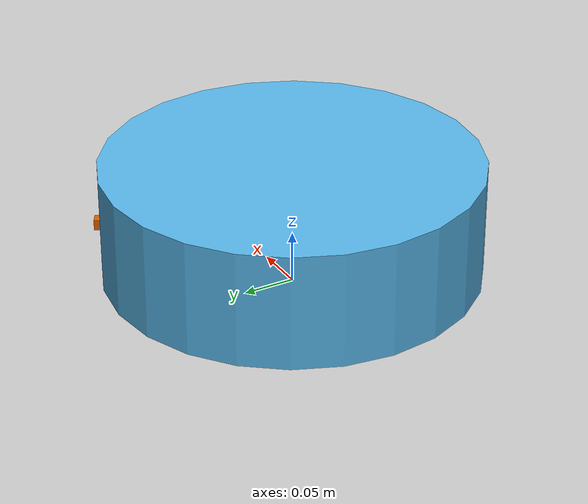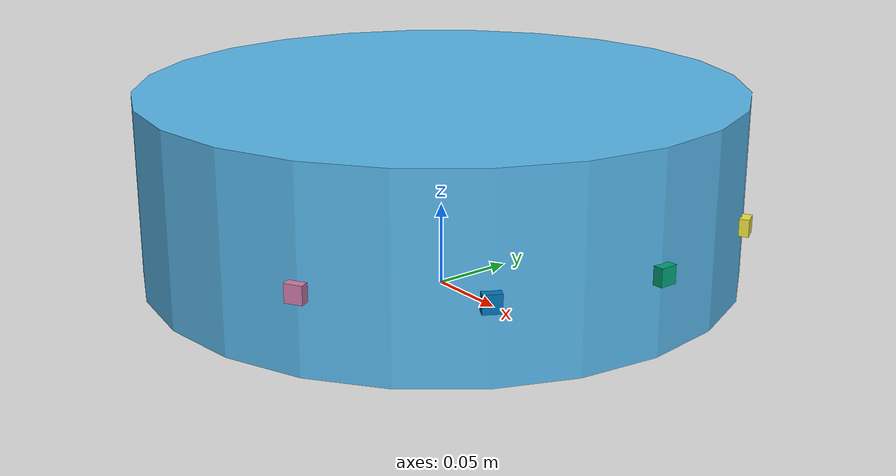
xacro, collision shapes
<?xml version="1.0"?>
<robot name="kobuki_standalone"
	xmlns:sensor="http://playerstage.sourceforge.net/gazebo/xmlschema/#sensor"
	xmlns:controller="http://playerstage.sourceforge.net/gazebo/xmlschema/#controller"
	xmlns:interface="http://playerstage.sourceforge.net/gazebo/xmlschema/#interface"
	xmlns:xacro="http://ros.org/wiki/xacro">
	<!-- Defines the kobuki component tag. -->
	<xacro:include filename="$(find custom_description)/description/kobuki/urdf/kobuki.urdf.xacro" />
	<kobuki/>
	<xacro:include filename="$(find custom_description)/description/range_sensor.urdf.xacro" />

	<!-- front sensor -->
	<range_sensor name="front_sonar" parent="base_link" ros_topic="/front_range" update_rate="50" min_range="0.020" max_range="3" field_of_view="${30*3.1415926/180}" ray_count="1">
		<origin xyz="0.178 0.0 0.05" rpy="0 0 0" />
	</range_sensor>

	<!-- left sensor -->
	<range_sensor name="front_left_sonar" parent="base_link" ros_topic="/front_left_range" update_rate="50" min_range="0.02" max_range="3" field_of_view="${30*3.1415926/180}" ray_count="1">
		<origin xyz="0.154 0.089 0.05" rpy="0 0 ${30*3.1415926/180}" />
	</range_sensor>
	<!-- right sensor -->
	<range_sensor name="front_right_sonar" parent="base_link" ros_topic="/front_right_range" update_rate="50" min_range="0.020" max_range="3" field_of_view="${30*3.1415926/180}" ray_count="1">
		<origin xyz="0.154 -0.089 0.05" rpy="0 0 ${-30*3.1415926/180}" />
	</range_sensor>
	<range_sensor name="left_sonar" parent="base_link" ros_topic="/left_range" update_rate="50" min_range="0.02" max_range="3" field_of_view="${30*3.1415926/180}" ray_count="1">
		<origin xyz="0.089 0.154 0.05" rpy="0 0 ${60*3.1415926/180}" />
	</range_sensor>
	<range_sensor name="right_sonar" parent="base_link" ros_topic="/right_range" update_rate="50" min_range="0.02" max_range="3" field_of_view="${30*3.1415926/180}" ray_count="1">
		<origin xyz="0.089 -0.154 0.05" rpy="0 0 ${-60*3.1415926/180}" />
	</range_sensor>

</robot>

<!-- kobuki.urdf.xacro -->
<robot name="kobuki" xmlns:xacro="http://ros.org/wiki/xacro">
        <xacro:include filename="$(find custom_description)/description/common_properties.urdf.xacro" />
        <xacro:include filename="$(find custom_description)/description/kobuki/urdf/kobuki_gazebo.urdf.xacro" />
	<!-- Kobuki -->
	<macro name="kobuki">
		<link name="base_footprint" />
		<joint name="base_joint" type="fixed">
			<origin xyz="0 0 0.0102" rpy="0 0 0" />
			<parent link="base_footprint" />
			<child link="base_link" />
		</joint>
		<link name="base_link">
			<visual>
				<geometry>
					<!-- new mesh -->
					<mesh filename="package://kobuki_description/meshes/main_body.dae" />
				</geometry>
				<origin xyz="0.001 0 0.05199" rpy="0 0 0" />
			</visual>
			<collision>
				<geometry>
					<cylinder length="0.10938" radius="0.178" />
				</geometry>
				<origin xyz="0.0 0 0.05949" rpy="0 0 0" />
			</collision>
			<inertial>
				<!-- COM experimentally determined -->
				<origin xyz="0.01 0 0" />
				<mass value="2.4" />
				<!-- 2.4/2.6 kg for small/big battery pack -->
				<inertia ixx="0.019995" ixy="0.0" ixz="0.0" iyy="0.019995" iyz="0.0" izz="0.03675" />
			</inertial>
		</link>
		<joint name="wheel_left_joint" type="continuous">
			<parent link="base_link" />
			<child link="wheel_left_link" />
			<origin xyz="0.00 ${0.23/2} 0.0250" rpy="${-M_PI/2} 0 0" />
			<axis xyz="0 0 1" />
		</joint>
		<link name="wheel_left_link">
			<visual>
				<geometry>
					<mesh filename="package://kobuki_description/meshes/wheel.dae" />
				</geometry>
				<origin xyz="0 0 0" rpy="0 0 0" />
			</visual>
			<collision>
				<geometry>
					<cylinder length="0.0206" radius="0.0352" />
				</geometry>
				<origin rpy="0 0 0" xyz="0 0 0" />
			</collision>
			<inertial>
				<mass value="0.01" />
				<origin xyz="0 0 0" />
				<inertia ixx="0.001" ixy="0.0" ixz="0.0" iyy="0.001" iyz="0.0" izz="0.001" />
			</inertial>
		</link>
		<joint name="wheel_right_joint" type="continuous">
			<parent link="base_link" />
			<child link="wheel_right_link" />
			<origin xyz="0.00 -${0.23/2} 0.0250" rpy="${-M_PI/2} 0 0" />
			<axis xyz="0 0 1" />
		</joint>
		<link name="wheel_right_link">
			<visual>
				<geometry>
					<mesh filename="package://kobuki_description/meshes/wheel.dae" />
				</geometry>
				<origin xyz="0 0 0" rpy="0 0 0" />
			</visual>
			<collision>
				<geometry>
					<cylinder length="0.0206" radius="0.0350" />
				</geometry>
				<origin rpy="0 0 0" xyz="0 0 0" />
			</collision>
			<inertial>
				<mass value="0.01" />
				<origin xyz="0 0 0" />
				<inertia ixx="0.001" ixy="0.0" ixz="0.0" iyy="0.001" iyz="0.0" izz="0.001" />
			</inertial>
		</link>
		<joint name="caster_front_joint" type="fixed">
			<parent link="base_link" />
			<child link="caster_front_link" />
			<origin xyz="0.115 0.0 0.007" rpy="${-M_PI/2} 0 0" />
		</joint>
		<link name="caster_front_link">
			<collision>
				<geometry>
					<cylinder length="0.0176" radius="0.017" />
				</geometry>
				<origin rpy="0 0 0" xyz="0 0 0" />
			</collision>
			<inertial>
				<mass value="0.01" />
				<origin xyz="0 0 0" />
				<inertia ixx="0.001" ixy="0.0" ixz="0.0" iyy="0.001" iyz="0.0" izz="0.001" />
			</inertial>
		</link>
		<joint name="caster_back_joint" type="fixed">
			<parent link="base_link" />
			<child link="caster_back_link" />
			<origin xyz="-0.135 0.0 0.009" rpy="${-M_PI/2} 0 0" />
		</joint>
		<link name="caster_back_link">
			<collision>
				<geometry>
					<cylinder length="0.0176" radius="0.017" />
				</geometry>
				<origin rpy="0 0 0" xyz="0 0 0" />
			</collision>
			<inertial>
				<mass value="0.01" />
				<origin xyz="0 0 0" />
				<inertia ixx="0.001" ixy="0.0" ixz="0.0" iyy="0.001" iyz="0.0" izz="0.001" />
			</inertial>
		</link>
		<!-- Kobuki's sensors -->
		<joint name="gyro_joint" type="fixed">
			<axis xyz="0 1 0" />
			<origin xyz="0.056 0.062 0.0202" rpy="0 0 0" />
			<parent link="base_link" />
			<child link="gyro_link" />
		</joint>
		<link name="gyro_link">
			<inertial>
				<mass value="0.001" />
				<origin xyz="0 0 0" rpy="0 0 0" />
				<inertia ixx="0.0001" ixy="0" ixz="0" iyy="0.000001" iyz="0" izz="0.0001" />
			</inertial>
		</link>
		<joint name="cliff_sensor_left_joint" type="fixed">
			<origin xyz="0.08734 0.13601 0.0214" rpy="0 ${M_PI/2} 0" />
			<parent link="base_link" />
			<child link="cliff_sensor_left_link" />
		</joint>
		<link name="cliff_sensor_left_link">
			<inertial>
				<mass value="0.0001" />
				<origin xyz="0 0 0" />
				<inertia ixx="0.0001" ixy="0.0" ixz="0.0" iyy="0.0001" iyz="0.0" izz="0.0001" />
			</inertial>
		</link>
		<joint name="cliff_sensor_right_joint" type="fixed">
			<origin xyz="0.085 -0.13601 0.0214" rpy="0 ${M_PI/2} 0" />
			<parent link="base_link" />
			<child link="cliff_sensor_right_link" />
		</joint>
		<link name="cliff_sensor_right_link">
			<inertial>
				<mass value="0.0001" />
				<origin xyz="0 0 0" />
				<inertia ixx="0.0001" ixy="0.0" ixz="0.0" iyy="0.0001" iyz="0.0" izz="0.0001" />
			</inertial>
		</link>
		<joint name="cliff_sensor_front_joint" type="fixed">
			<origin xyz="0.156 0.00 0.0214" rpy="0 ${M_PI/2} 0" />
			<parent link="base_link" />
			<child link="cliff_sensor_front_link" />
		</joint>
		<link name="cliff_sensor_front_link">
			<inertial>
				<mass value="0.0001" />
				<origin xyz="0 0 0" />
				<inertia ixx="0.0001" ixy="0.0" ixz="0.0" iyy="0.0001" iyz="0.0" izz="0.0001" />
			</inertial>
		</link>
		<!-- Kobuki Gazebo simulation details -->
		<kobuki_sim />
	</macro>
</robot>

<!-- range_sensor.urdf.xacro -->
<robot xmlns:xacro="http://www.ros.org/wiki/xacro">
  <xacro:macro name="range_sensor" params="name parent *origin ros_topic update_rate min_range max_range field_of_view ray_count type:=ultrasound">
    <joint name="${name}_joint" type="fixed">
      <xacro:insert_block name="origin" />
      <parent link="${parent}"/>
      <child link="${name}_link"/>
    </joint>

    <link name="${name}_link">
      <inertial>
        <mass value="0.001" />
        <origin xyz="0 0 0" rpy="0 0 0" />
        <inertia ixx="0.000000017" ixy="0" ixz="0" iyy="0.000000017" iyz="0" izz="0.000000017" />
      </inertial>
      <visual>
        <origin xyz="0 0 0" rpy="0 0 0" />
        <geometry>
          <box size="0.01 0.01 0.01" />
        </geometry>
      </visual>
      <collision>
        <origin xyz="0 0 0" rpy="0 0 0" />
        <geometry>
          <box size="0.01 0.01 0.01" />
        </geometry>
      </collision>
    </link>

    <gazebo reference="${name}_link">
      <sensor type="ray" name="${name}">
        <always_on>true</always_on>
        <update_rate>${update_rate}</update_rate>
        <pose>0 0 0 0 0 0</pose>
        <visualize>false</visualize>
        <ray>
          <scan>
            <horizontal>
              <samples>${ray_count}</samples>
              <resolution>1</resolution>
              <min_angle>-${field_of_view/2}</min_angle>
              <max_angle> ${field_of_view/2}</max_angle>
            </horizontal>
          </scan>
          <range>
            <min>${min_range}</min>
            <max>${max_range}</max>
            <resolution>0.01</resolution>
          </range>
        </ray>

        <plugin name="gazebo_ros_${name}_controller" filename="libgazebo_ros_range.so">
          <fov>${field_of_view}</fov>
          <updateRate>${update_rate}</updateRate>
          <gaussianNoise>0.01</gaussianNoise>
          <topicName>${ros_topic}</topicName>
          <frameName>${name}_link</frameName>
          <radiation>${type}</radiation>
        </plugin>
      </sensor>
    </gazebo>
  </xacro:macro>
</robot>
